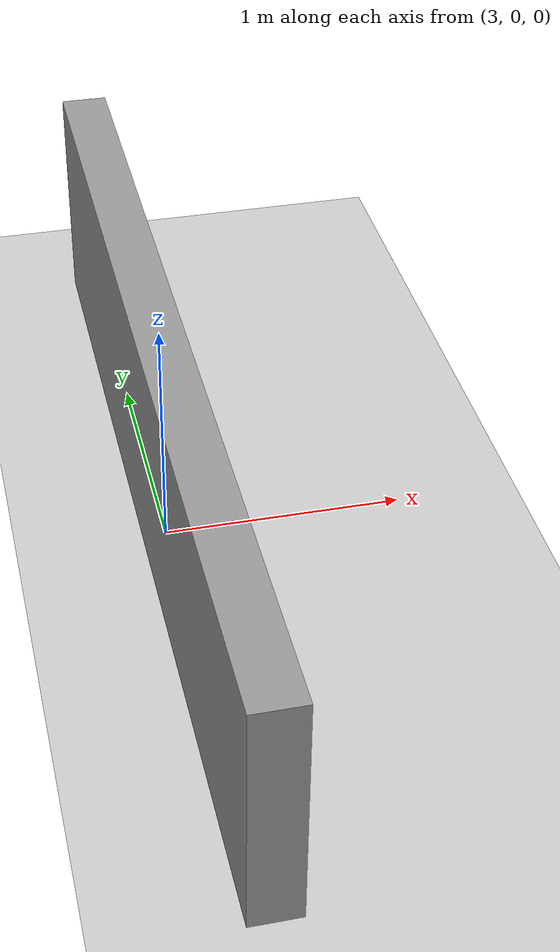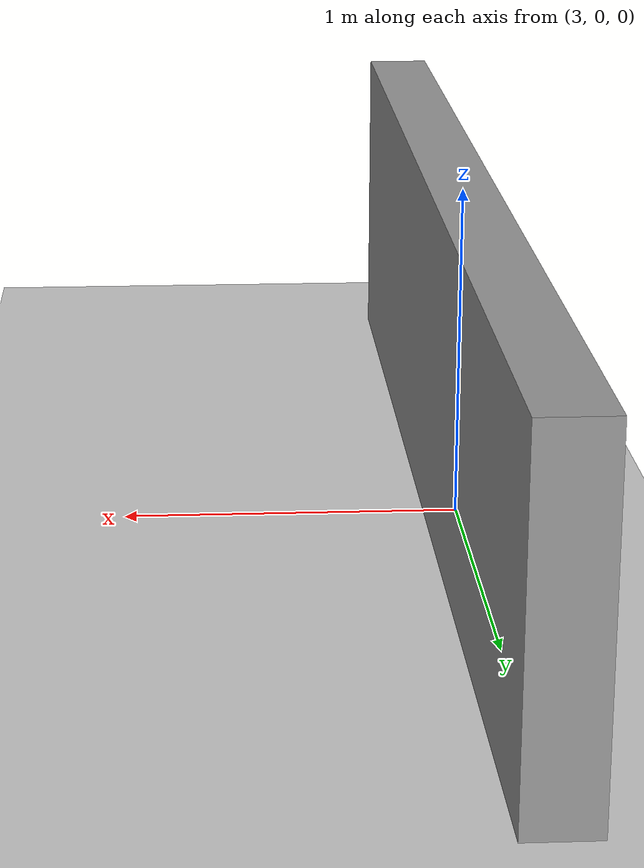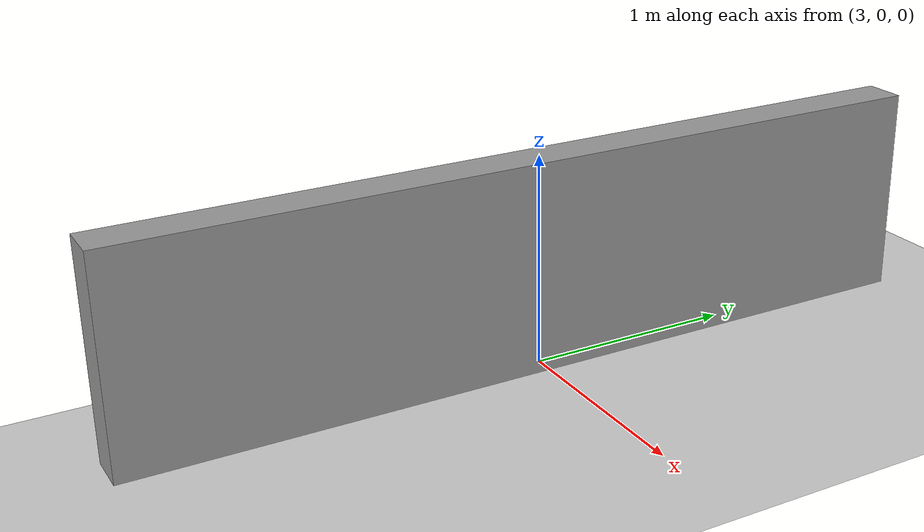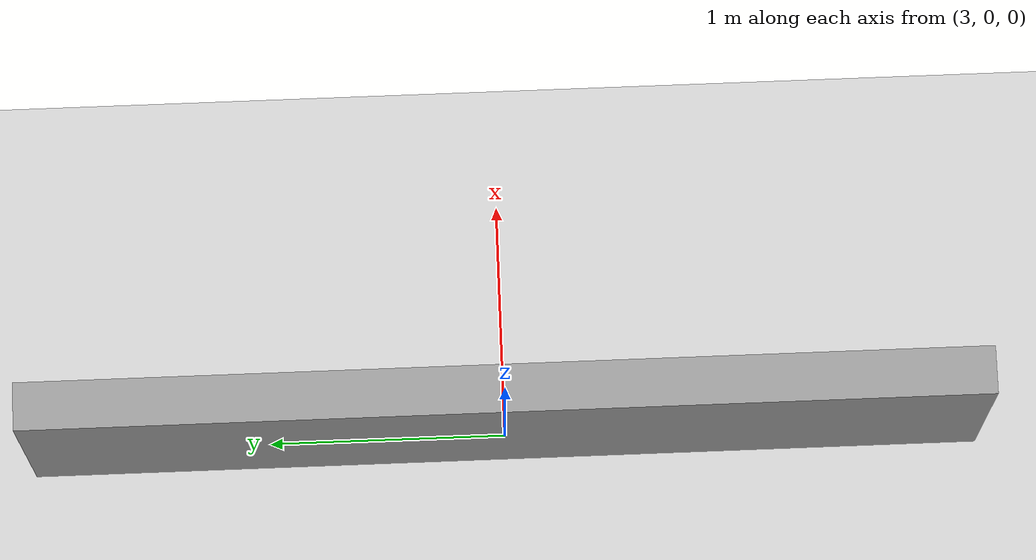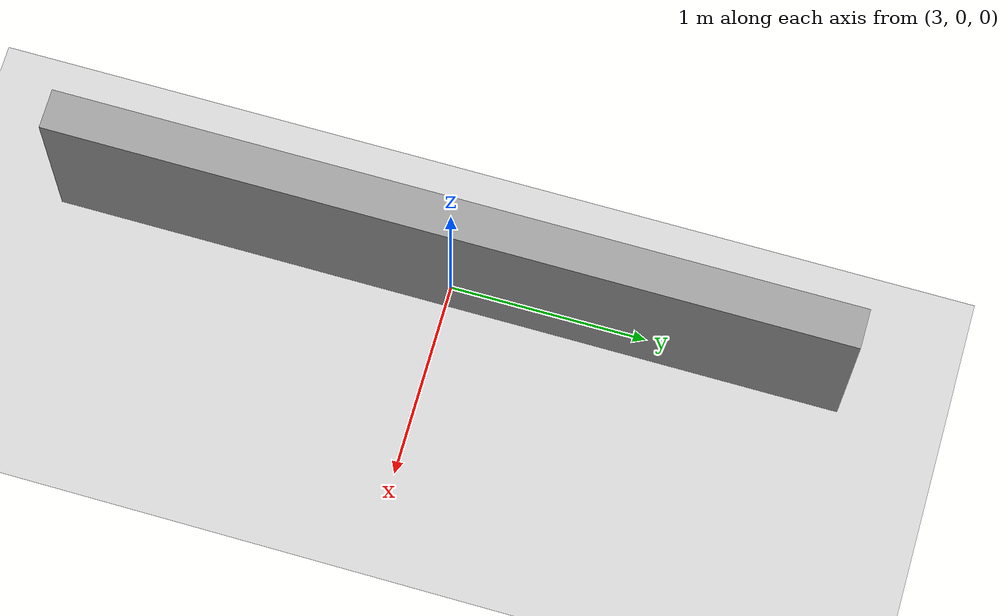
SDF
<?xml version="1.0" ?>
<sdf version="1.9">
  <world name="Obstacle_test_course">
    <plugin filename="gz-sim-physics-system" name="gz::sim::systems::Physics"></plugin>
    <plugin filename="gz-sim-user-commands-system" name="gz::sim::systems::UserCommands"></plugin>
    <plugin filename="gz-sim-scene-broadcaster-system" name="gz::sim::systems::SceneBroadcaster"></plugin>
    <plugin filename="gz-sim-sensors-system" name="gz::sim::systems::Sensors">
      <render_engine>ogre2</render_engine>
    </plugin>
    <plugin filename="gz-sim-imu-system" name="gz::sim::systems::Imu"></plugin>

    <light type="directional" name="sun">
      <cast_shadows>true</cast_shadows>
      <pose>0 0 10 0 0 0</pose>
      <diffuse>0.8 0.8 0.8 1</diffuse>
      <specular>0.2 0.2 0.2 1</specular>
      <attenuation>
        <range>1000</range>
        <constant>0.9</constant>
        <linear>0.01</linear>
        <quadratic>0.001</quadratic>
      </attenuation>
      <direction>-0.5 0.1 -0.9</direction>
    </light>

    <model name="ground_plane">
      <static>true</static>
      <link name="link">
        <collision name="collision">
          <geometry>
            <plane>
              <normal>0 0 1</normal>
            </plane>
          </geometry>
        </collision>
        <visual name="visual">
          <geometry>
            <plane>
              <normal>0 0 1</normal>
              <size>100 100</size>
            </plane>
          </geometry>
          <material>
            <ambient>0.8 0.8 0.8 1</ambient>
            <diffuse>0.8 0.8 0.8 1</diffuse>
            <specular>0.8 0.8 0.8 1</specular>
          </material>
        </visual>
      </link>
    </model>

    <model name="wall_1">
        <static>true</static>
        <pose>3 0 0.5 0 0 0</pose>
        <link name="link">
            <collision name="collision">
                <geometry><box><size>0.2 4 1</size></box></geometry>
            </collision>
            <visual name="visual">
                <geometry><box><size>0.2 4 1</size></box></geometry>
                <material><ambient>0.6 0.6 0.6 1</ambient><diffuse>0.6 0.6 0.6 1</diffuse></material>
            </visual>
        </link>
    </model>
  </world>
</sdf>
